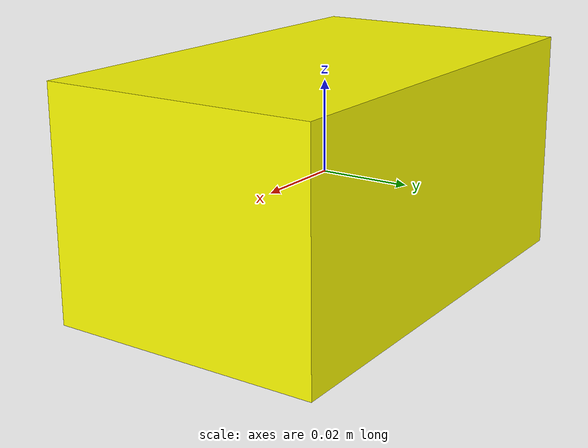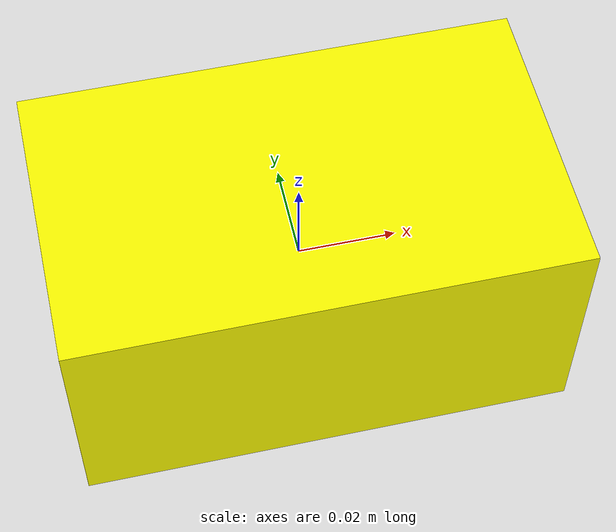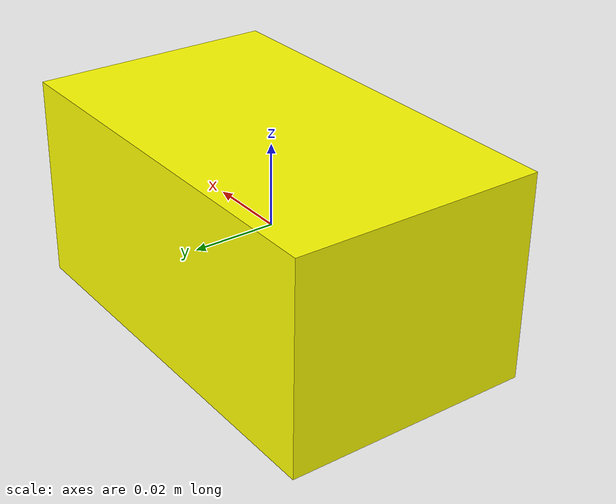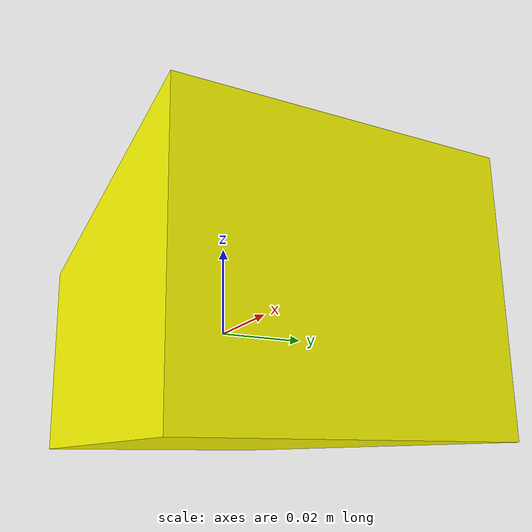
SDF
<?xml version="1.0" ?>
<sdf version="1.9">
  <model name="grasp_verify_camera">
    <static>true</static>

    <link name="camera_link">
      <visual name="camera_visual">
        <geometry>
          <box>
            <size>0.10 0.06 0.05</size>
          </box>
        </geometry>
        <material>
          <ambient>1 1 0 1</ambient>
          <diffuse>1 1 0 1</diffuse>
        </material>
      </visual>

      <sensor name="rgbd" type="rgbd_camera">
        <always_on>true</always_on>
        <update_rate>15</update_rate>

        <topic>/runtime/grasp_verify</topic>

        <camera>
          <horizontal_fov>1.047</horizontal_fov>

          <image>
            <width>640</width>
            <height>480</height>
            <format>R8G8B8</format>
          </image>

          <clip>
            <near>0.05</near>
            <far>3.0</far>
          </clip>
        </camera>

      </sensor>

    </link>
  </model>
</sdf>
